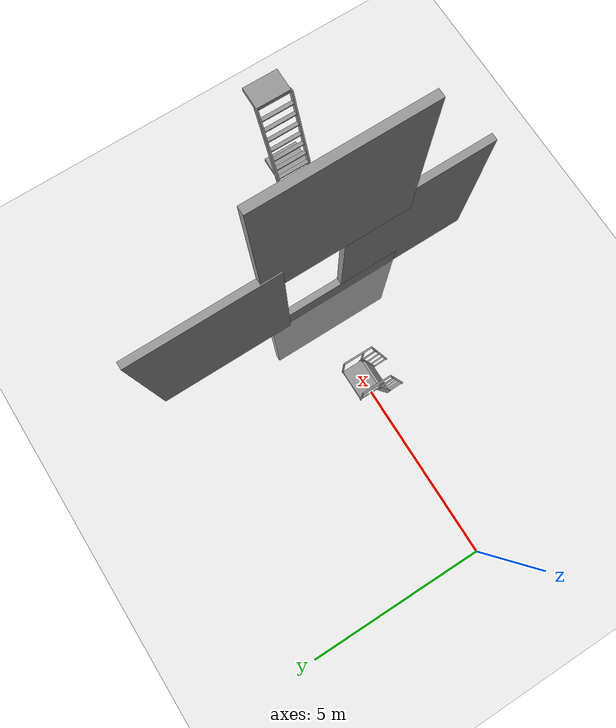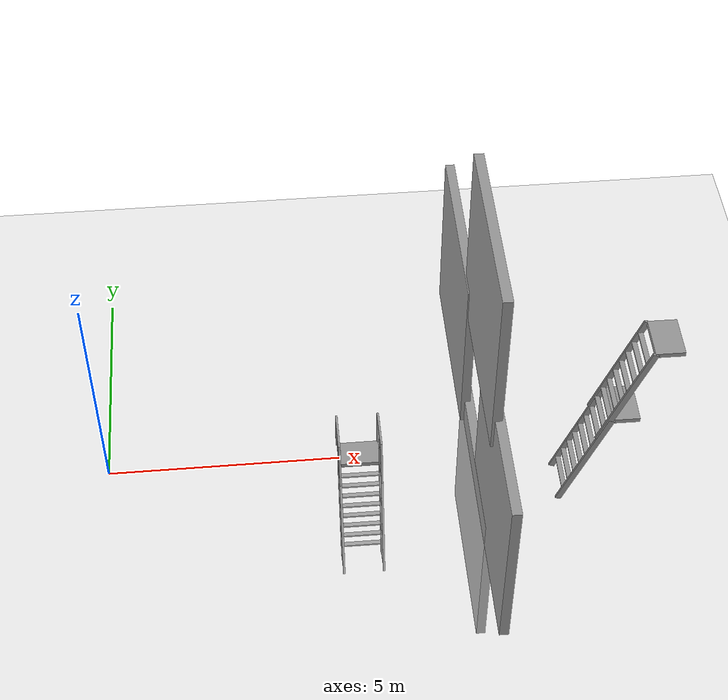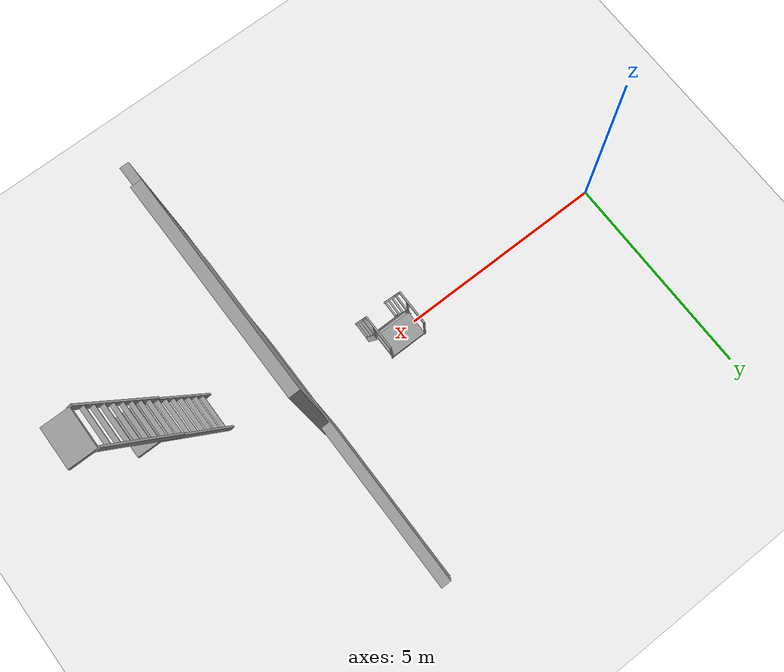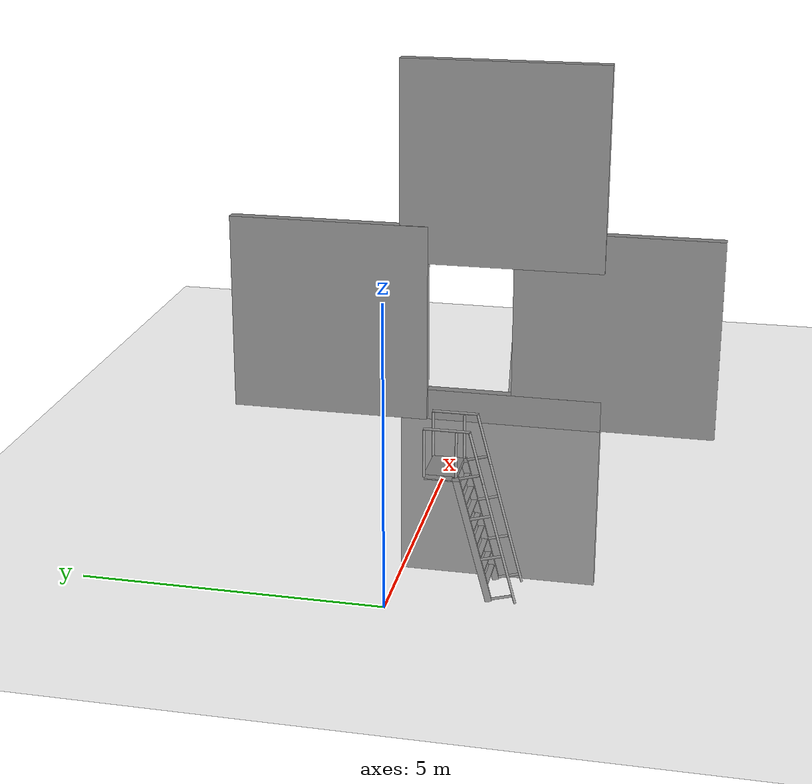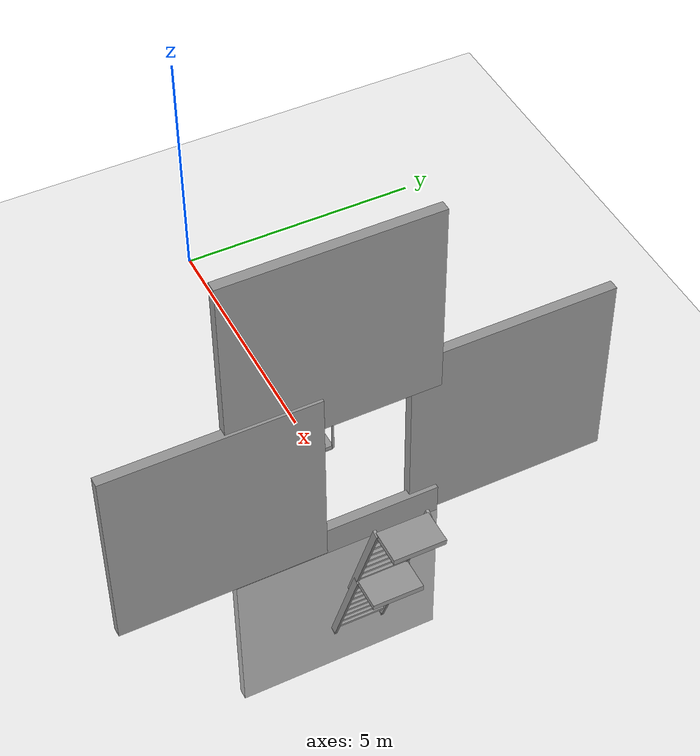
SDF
<sdf version="1.7">
 <world name="default">
  <model name="ground_plane">
   <static>1</static>
   <link name="link">
    <collision name="collision">
     <geometry><plane><normal>0 0 1</normal><size>100 100</size></plane></geometry>
     <surface>
      <contact><collide_bitmask>65535</collide_bitmask></contact>
      <friction><ode><mu>100</mu><mu2>50</mu2></ode></friction>
     </surface>
    </collision>
    <visual name="visual">
     <cast_shadows>0</cast_shadows>
     <geometry><plane><normal>0 0 1</normal><size>100 100</size></plane></geometry>
     <material>
      <script><uri>file://media/materials/scripts/gazebo.material</uri><name>Gazebo/Grey</name></script>
     </material>
    </visual>
   </link>
  </model>
  <model name="grey_wall_0_clone_1">
   <static>1</static>
   <link name="link">
    <pose>0 0 2 0 -0 0</pose>
    <collision name="collision"><geometry><box><size>0.2 4 4</size></box></geometry></collision>
    <visual name="visual">
     <cast_shadows>0</cast_shadows>
     <geometry><box><size>0.2 4 4</size></box></geometry>
     <material><script><name>vrc/grey_wall</name><uri>__default__</uri></script></material>
    </visual>
   </link>
   <pose>7.87479 2.84716 0 0 -0 0</pose>
  </model>
  <model name="grey_wall_0_clone_3">
   <static>1</static>
   <link name="link">
    <pose>0 0 2 0 -0 0</pose>
    <collision name="collision"><geometry><box><size>0.2 4 4</size></box></geometry></collision>
    <visual name="visual">
     <cast_shadows>0</cast_shadows>
     <geometry><box><size>0.2 4 4</size></box></geometry>
     <material><script><name>vrc/grey_wall</name><uri>__default__</uri></script></material>
    </visual>
   </link>
   <pose>7.95689 -2.83465 0 0 -0 0</pose>
  </model>
  <model name="grey_wall_0_clone_1_clone_0_clone_clone">
   <static>1</static>
   <link name="link">
    <pose>0 0 2 0 -0 0</pose>
    <collision name="collision"><geometry><box><size>0.2 4 4</size></box></geometry></collision>
    <visual name="visual">
     <cast_shadows>0</cast_shadows>
     <geometry><box><size>0.2 4 4</size></box></geometry>
     <material><script><name>vrc/grey_wall</name><uri>__default__</uri></script></material>
    </visual>
   </link>
   <pose>7.90163 -0.590147 3.25039 0 -0 0</pose>
  </model>
  <model name="grey_wall_0_clone_1_clone_0_clone_clone_1_clone">
   <static>1</static>
   <link name="link">
    <pose>0 0 2 0 -0 0</pose>
    <collision name="collision"><geometry><box><size>0.2 4 4</size></box></geometry></collision>
    <visual name="visual">
     <cast_shadows>0</cast_shadows>
     <geometry><box><size>0.2 4 4</size></box></geometry>
     <material><script><name>vrc/grey_wall</name><uri>__default__</uri></script></material>
    </visual>
   </link>
   <pose>7.95608 -0.613712 -3.38849 0 -0 0</pose>
  </model>
  <model name="ladder_70deg_0rails_clone_0_clone">
   <static>1</static>
   <link name="step0">
    <pose>0 0.097059 0.266667 0 -0 0</pose>
    <inertial>
     <mass>9.75482</mass>
     <inertia>
      <ixx>0.00957124</ixx>
      <iyy>0.65963</iyy>
      <izz>0.666842</izz>
      <ixy>0</ixy>
      <ixz>0</ixz>
      <iyz>0</iyz>
     </inertia>
    </inertial>
    <collision name="collision"><geometry><box><size>0.9 0.1016 0.0381</size></box></geometry></collision>
    <visual name="visual">
     <geometry><box><size>0.9 0.1016 0.0381</size></box></geometry>
     <material>
      <script><uri>file://media/materials/scripts/gazebo.material</uri><name>Gazebo/Grey</name></script>
     </material>
    </visual>
   </link>
   <link name="step1">
    <pose>0 0.194117 0.533333 0 -0 0</pose>
    <inertial>
     <mass>9.75482</mass>
     <inertia>
      <ixx>0.00957124</ixx>
      <iyy>0.65963</iyy>
      <izz>0.666842</izz>
      <ixy>0</ixy>
      <ixz>0</ixz>
      <iyz>0</iyz>
     </inertia>
    </inertial>
    <collision name="collision"><geometry><box><size>0.9 0.1016 0.0381</size></box></geometry></collision>
    <visual name="visual">
     <geometry><box><size>0.9 0.1016 0.0381</size></box></geometry>
     <material>
      <script><uri>file://media/materials/scripts/gazebo.material</uri><name>Gazebo/Grey</name></script>
     </material>
    </visual>
   </link>
   <link name="step2">
    <pose>0 0.291176 0.8 0 -0 0</pose>
    <inertial>
     <mass>9.75482</mass>
     <inertia>
      <ixx>0.00957124</ixx>
      <iyy>0.65963</iyy>
      <izz>0.666842</izz>
      <ixy>0</ixy>
      <ixz>0</ixz>
      <iyz>0</iyz>
     </inertia>
    </inertial>
    <collision name="collision"><geometry><box><size>0.9 0.1016 0.0381</size></box></geometry></collision>
    <visual name="visual">
     <geometry><box><size>0.9 0.1016 0.0381</size></box></geometry>
     <material>
      <script><uri>file://media/materials/scripts/gazebo.material</uri><name>Gazebo/Grey</name></script>
     </material>
    </visual>
   </link>
   <link name="step3">
    <pose>0 0.388235 1.06667 0 -0 0</pose>
    <inertial>
     <mass>9.75482</mass>
     <inertia>
      <ixx>0.00957124</ixx>
      <iyy>0.65963</iyy>
      <izz>0.666842</izz>
      <ixy>0</ixy>
      <ixz>0</ixz>
      <iyz>0</iyz>
     </inertia>
    </inertial>
    <collision name="collision"><geometry><box><size>0.9 0.1016 0.0381</size></box></geometry></collision>
    <visual name="visual">
     <geometry><box><size>0.9 0.1016 0.0381</size></box></geometry>
     <material>
      <script><uri>file://media/materials/scripts/gazebo.material</uri><name>Gazebo/Grey</name></script>
     </material>
    </visual>
   </link>
   <link name="step4">
    <pose>0 0.485294 1.33333 0 -0 0</pose>
    <inertial>
     <mass>9.75482</mass>
     <inertia>
      <ixx>0.00957124</ixx>
      <iyy>0.65963</iyy>
      <izz>0.666842</izz>
      <ixy>0</ixy>
      <ixz>0</ixz>
      <iyz>0</iyz>
     </inertia>
    </inertial>
    <collision name="collision"><geometry><box><size>0.9 0.1016 0.0381</size></box></geometry></collision>
    <visual name="visual">
     <geometry><box><size>0.9 0.1016 0.0381</size></box></geometry>
     <material>
      <script><uri>file://media/materials/scripts/gazebo.material</uri><name>Gazebo/Grey</name></script>
     </material>
    </visual>
   </link>
   <link name="step5">
    <pose>0 0.582352 1.6 0 -0 0</pose>
    <inertial>
     <mass>9.75482</mass>
     <inertia>
      <ixx>0.00957124</ixx>
      <iyy>0.65963</iyy>
      <izz>0.666842</izz>
      <ixy>0</ixy>
      <ixz>0</ixz>
      <iyz>0</iyz>
     </inertia>
    </inertial>
    <collision name="collision"><geometry><box><size>0.9 0.1016 0.0381</size></box></geometry></collision>
    <visual name="visual">
     <geometry><box><size>0.9 0.1016 0.0381</size></box></geometry>
     <material>
      <script><uri>file://media/materials/scripts/gazebo.material</uri><name>Gazebo/Grey</name></script>
     </material>
    </visual>
   </link>
   <link name="step6">
    <pose>0 0.679411 1.86667 0 -0 0</pose>
    <inertial>
     <mass>9.75482</mass>
     <inertia>
      <ixx>0.00957124</ixx>
      <iyy>0.65963</iyy>
      <izz>0.666842</izz>
      <ixy>0</ixy>
      <ixz>0</ixz>
      <iyz>0</iyz>
     </inertia>
    </inertial>
    <collision name="collision"><geometry><box><size>0.9 0.1016 0.0381</size></box></geometry></collision>
    <visual name="visual">
     <geometry><box><size>0.9 0.1016 0.0381</size></box></geometry>
     <material>
      <script><uri>file://media/materials/scripts/gazebo.material</uri><name>Gazebo/Grey</name></script>
     </material>
    </visual>
   </link>
   <link name="step7">
    <pose>0 0.77647 2.13333 0 -0 0</pose>
    <inertial>
     <mass>9.75482</mass>
     <inertia>
      <ixx>0.00957124</ixx>
      <iyy>0.65963</iyy>
      <izz>0.666842</izz>
      <ixy>0</ixy>
      <ixz>0</ixz>
      <iyz>0</iyz>
     </inertia>
    </inertial>
    <collision name="collision"><geometry><box><size>0.9 0.1016 0.0381</size></box></geometry></collision>
    <visual name="visual">
     <geometry><box><size>0.9 0.1016 0.0381</size></box></geometry>
     <material>
      <script><uri>file://media/materials/scripts/gazebo.material</uri><name>Gazebo/Grey</name></script>
     </material>
    </visual>
   </link>
   <link name="landing">
    <pose>0 1.17353 2.4 0 -0 0</pose>
    <inertial>
     <mass>57.6072</mass>
     <inertia><ixx>1.73518</ixx><iyy>3.89545</iyy><izz>5.6167</izz><ixy>0</ixy><ixz>0</ixz><iyz>0</iyz></inertia>
    </inertial>
    <collision name="collision"><geometry><box><size>0.9 0.6 0.1016</size></box></geometry></collision>
    <visual name="visual">
     <geometry><box><size>0.9 0.6 0.1016</size></box></geometry>
     <material>
      <script><uri>file://media/materials/scripts/gazebo.material</uri><name>Gazebo/Grey</name></script>
     </material>
    </visual>
   </link>
   <link name="left_side_wall">
    <pose>-0.45 0.436764 1.2 1.22173 -0 0</pose>
    <collision name="collision"><geometry><box><size>0.0508 2.63403 0.13</size></box></geometry></collision>
    <visual name="visual">
     <geometry><box><size>0.0508 2.63403 0.13</size></box></geometry>
     <material>
      <script><uri>file://media/materials/scripts/gazebo.material</uri><name>Gazebo/Grey</name></script>
     </material>
    </visual>
   </link>
   <link name="right_side_wall">
    <pose>0.45 0.436764 1.2 1.22173 -0 0</pose>
    <collision name="collision"><geometry><box><size>0.0508 2.63403 0.13</size></box></geometry></collision>
    <visual name="visual">
     <geometry><box><size>0.0508 2.63403 0.13</size></box></geometry>
     <material>
      <script><uri>file://media/materials/scripts/gazebo.material</uri><name>Gazebo/Grey</name></script>
     </material>
    </visual>
   </link>
   <pose>9.61991 -1.0182 0 0 0 -1.5783</pose>
  </model>
  <model name="ladder_70deg_0rails_clone_1">
   <static>1</static>
   <link name="step0">
    <pose>0 0.097059 0.266667 0 -0 0</pose>
    <inertial>
     <mass>9.75482</mass>
     <inertia>
      <ixx>0.00957124</ixx>
      <iyy>0.65963</iyy>
      <izz>0.666842</izz>
      <ixy>0</ixy>
      <ixz>0</ixz>
      <iyz>0</iyz>
     </inertia>
    </inertial>
    <collision name="collision"><geometry><box><size>0.9 0.1016 0.0381</size></box></geometry></collision>
    <visual name="visual">
     <geometry><box><size>0.9 0.1016 0.0381</size></box></geometry>
     <material>
      <script><uri>file://media/materials/scripts/gazebo.material</uri><name>Gazebo/Grey</name></script>
     </material>
    </visual>
   </link>
   <link name="step1">
    <pose>0 0.194117 0.533333 0 -0 0</pose>
    <inertial>
     <mass>9.75482</mass>
     <inertia>
      <ixx>0.00957124</ixx>
      <iyy>0.65963</iyy>
      <izz>0.666842</izz>
      <ixy>0</ixy>
      <ixz>0</ixz>
      <iyz>0</iyz>
     </inertia>
    </inertial>
    <collision name="collision"><geometry><box><size>0.9 0.1016 0.0381</size></box></geometry></collision>
    <visual name="visual">
     <geometry><box><size>0.9 0.1016 0.0381</size></box></geometry>
     <material>
      <script><uri>file://media/materials/scripts/gazebo.material</uri><name>Gazebo/Grey</name></script>
     </material>
    </visual>
   </link>
   <link name="step2">
    <pose>0 0.291176 0.8 0 -0 0</pose>
    <inertial>
     <mass>9.75482</mass>
     <inertia>
      <ixx>0.00957124</ixx>
      <iyy>0.65963</iyy>
      <izz>0.666842</izz>
      <ixy>0</ixy>
      <ixz>0</ixz>
      <iyz>0</iyz>
     </inertia>
    </inertial>
    <collision name="collision"><geometry><box><size>0.9 0.1016 0.0381</size></box></geometry></collision>
    <visual name="visual">
     <geometry><box><size>0.9 0.1016 0.0381</size></box></geometry>
     <material>
      <script><uri>file://media/materials/scripts/gazebo.material</uri><name>Gazebo/Grey</name></script>
     </material>
    </visual>
   </link>
   <link name="step3">
    <pose>0 0.388235 1.06667 0 -0 0</pose>
    <inertial>
     <mass>9.75482</mass>
     <inertia>
      <ixx>0.00957124</ixx>
      <iyy>0.65963</iyy>
      <izz>0.666842</izz>
      <ixy>0</ixy>
      <ixz>0</ixz>
      <iyz>0</iyz>
     </inertia>
    </inertial>
    <collision name="collision"><geometry><box><size>0.9 0.1016 0.0381</size></box></geometry></collision>
    <visual name="visual">
     <geometry><box><size>0.9 0.1016 0.0381</size></box></geometry>
     <material>
      <script><uri>file://media/materials/scripts/gazebo.material</uri><name>Gazebo/Grey</name></script>
     </material>
    </visual>
   </link>
   <link name="step4">
    <pose>0 0.485294 1.33333 0 -0 0</pose>
    <inertial>
     <mass>9.75482</mass>
     <inertia>
      <ixx>0.00957124</ixx>
      <iyy>0.65963</iyy>
      <izz>0.666842</izz>
      <ixy>0</ixy>
      <ixz>0</ixz>
      <iyz>0</iyz>
     </inertia>
    </inertial>
    <collision name="collision"><geometry><box><size>0.9 0.1016 0.0381</size></box></geometry></collision>
    <visual name="visual">
     <geometry><box><size>0.9 0.1016 0.0381</size></box></geometry>
     <material>
      <script><uri>file://media/materials/scripts/gazebo.material</uri><name>Gazebo/Grey</name></script>
     </material>
    </visual>
   </link>
   <link name="step5">
    <pose>0 0.582352 1.6 0 -0 0</pose>
    <inertial>
     <mass>9.75482</mass>
     <inertia>
      <ixx>0.00957124</ixx>
      <iyy>0.65963</iyy>
      <izz>0.666842</izz>
      <ixy>0</ixy>
      <ixz>0</ixz>
      <iyz>0</iyz>
     </inertia>
    </inertial>
    <collision name="collision"><geometry><box><size>0.9 0.1016 0.0381</size></box></geometry></collision>
    <visual name="visual">
     <geometry><box><size>0.9 0.1016 0.0381</size></box></geometry>
     <material>
      <script><uri>file://media/materials/scripts/gazebo.material</uri><name>Gazebo/Grey</name></script>
     </material>
    </visual>
   </link>
   <link name="step6">
    <pose>0 0.679411 1.86667 0 -0 0</pose>
    <inertial>
     <mass>9.75482</mass>
     <inertia>
      <ixx>0.00957124</ixx>
      <iyy>0.65963</iyy>
      <izz>0.666842</izz>
      <ixy>0</ixy>
      <ixz>0</ixz>
      <iyz>0</iyz>
     </inertia>
    </inertial>
    <collision name="collision"><geometry><box><size>0.9 0.1016 0.0381</size></box></geometry></collision>
    <visual name="visual">
     <geometry><box><size>0.9 0.1016 0.0381</size></box></geometry>
     <material>
      <script><uri>file://media/materials/scripts/gazebo.material</uri><name>Gazebo/Grey</name></script>
     </material>
    </visual>
   </link>
   <link name="step7">
    <pose>0 0.77647 2.13333 0 -0 0</pose>
    <inertial>
     <mass>9.75482</mass>
     <inertia>
      <ixx>0.00957124</ixx>
      <iyy>0.65963</iyy>
      <izz>0.666842</izz>
      <ixy>0</ixy>
      <ixz>0</ixz>
      <iyz>0</iyz>
     </inertia>
    </inertial>
    <collision name="collision"><geometry><box><size>0.9 0.1016 0.0381</size></box></geometry></collision>
    <visual name="visual">
     <geometry><box><size>0.9 0.1016 0.0381</size></box></geometry>
     <material>
      <script><uri>file://media/materials/scripts/gazebo.material</uri><name>Gazebo/Grey</name></script>
     </material>
    </visual>
   </link>
   <link name="landing">
    <pose>0 1.17353 2.4 0 -0 0</pose>
    <inertial>
     <mass>57.6072</mass>
     <inertia><ixx>1.73518</ixx><iyy>3.89545</iyy><izz>5.6167</izz><ixy>0</ixy><ixz>0</ixz><iyz>0</iyz></inertia>
    </inertial>
    <collision name="collision"><geometry><box><size>0.9 0.6 0.1016</size></box></geometry></collision>
    <visual name="visual">
     <geometry><box><size>0.9 0.6 0.1016</size></box></geometry>
     <material>
      <script><uri>file://media/materials/scripts/gazebo.material</uri><name>Gazebo/Grey</name></script>
     </material>
    </visual>
   </link>
   <link name="left_side_wall">
    <pose>-0.45 0.436764 1.2 1.22173 -0 0</pose>
    <collision name="collision"><geometry><box><size>0.0508 2.63403 0.13</size></box></geometry></collision>
    <visual name="visual">
     <geometry><box><size>0.0508 2.63403 0.13</size></box></geometry>
     <material>
      <script><uri>file://media/materials/scripts/gazebo.material</uri><name>Gazebo/Grey</name></script>
     </material>
    </visual>
   </link>
   <link name="right_side_wall">
    <pose>0.45 0.436764 1.2 1.22173 -0 0</pose>
    <collision name="collision"><geometry><box><size>0.0508 2.63403 0.13</size></box></geometry></collision>
    <visual name="visual">
     <geometry><box><size>0.0508 2.63403 0.13</size></box></geometry>
     <material>
      <script><uri>file://media/materials/scripts/gazebo.material</uri><name>Gazebo/Grey</name></script>
     </material>
    </visual>
   </link>
   <pose>10.2796 -1.02063 1.92456 0 0 -1.5783</pose>
  </model>
  <model name="ladder_75deg_2rails_clone">
   <static>1</static>
   <link name="step0">
    <pose>0 0.071453 0.266667 0 -0 0</pose>
    <inertial>
     <mass>9.75482</mass>
     <inertia>
      <ixx>0.00957124</ixx>
      <iyy>0.65963</iyy>
      <izz>0.666842</izz>
      <ixy>0</ixy>
      <ixz>0</ixz>
      <iyz>0</iyz>
     </inertia>
    </inertial>
    <collision name="collision"><geometry><box><size>0.9 0.1016 0.0381</size></box></geometry></collision>
    <visual name="visual">
     <geometry><box><size>0.9 0.1016 0.0381</size></box></geometry>
     <material>
      <script><uri>file://media/materials/scripts/gazebo.material</uri><name>Gazebo/Grey</name></script>
     </material>
    </visual>
   </link>
   <link name="step1">
    <pose>0 0.142906 0.533333 0 -0 0</pose>
    <inertial>
     <mass>9.75482</mass>
     <inertia>
      <ixx>0.00957124</ixx>
      <iyy>0.65963</iyy>
      <izz>0.666842</izz>
      <ixy>0</ixy>
      <ixz>0</ixz>
      <iyz>0</iyz>
     </inertia>
    </inertial>
    <collision name="collision"><geometry><box><size>0.9 0.1016 0.0381</size></box></geometry></collision>
    <visual name="visual">
     <geometry><box><size>0.9 0.1016 0.0381</size></box></geometry>
     <material>
      <script><uri>file://media/materials/scripts/gazebo.material</uri><name>Gazebo/Grey</name></script>
     </material>
    </visual>
   </link>
   <link name="step2">
    <pose>0 0.214359 0.8 0 -0 0</pose>
    <inertial>
     <mass>9.75482</mass>
     <inertia>
      <ixx>0.00957124</ixx>
      <iyy>0.65963</iyy>
      <izz>0.666842</izz>
      <ixy>0</ixy>
      <ixz>0</ixz>
      <iyz>0</iyz>
     </inertia>
    </inertial>
    <collision name="collision"><geometry><box><size>0.9 0.1016 0.0381</size></box></geometry></collision>
    <visual name="visual">
     <geometry><box><size>0.9 0.1016 0.0381</size></box></geometry>
     <material>
      <script><uri>file://media/materials/scripts/gazebo.material</uri><name>Gazebo/Grey</name></script>
     </material>
    </visual>
   </link>
   <link name="step3">
    <pose>0 0.285812 1.06667 0 -0 0</pose>
    <inertial>
     <mass>9.75482</mass>
     <inertia>
      <ixx>0.00957124</ixx>
      <iyy>0.65963</iyy>
      <izz>0.666842</izz>
      <ixy>0</ixy>
      <ixz>0</ixz>
      <iyz>0</iyz>
     </inertia>
    </inertial>
    <collision name="collision"><geometry><box><size>0.9 0.1016 0.0381</size></box></geometry></collision>
    <visual name="visual">
     <geometry><box><size>0.9 0.1016 0.0381</size></box></geometry>
     <material>
      <script><uri>file://media/materials/scripts/gazebo.material</uri><name>Gazebo/Grey</name></script>
     </material>
    </visual>
   </link>
   <link name="step4">
    <pose>0 0.357266 1.33333 0 -0 0</pose>
    <inertial>
     <mass>9.75482</mass>
     <inertia>
      <ixx>0.00957124</ixx>
      <iyy>0.65963</iyy>
      <izz>0.666842</izz>
      <ixy>0</ixy>
      <ixz>0</ixz>
      <iyz>0</iyz>
     </inertia>
    </inertial>
    <collision name="collision"><geometry><box><size>0.9 0.1016 0.0381</size></box></geometry></collision>
    <visual name="visual">
     <geometry><box><size>0.9 0.1016 0.0381</size></box></geometry>
     <material>
      <script><uri>file://media/materials/scripts/gazebo.material</uri><name>Gazebo/Grey</name></script>
     </material>
    </visual>
   </link>
   <link name="step5">
    <pose>0 0.428719 1.6 0 -0 0</pose>
    <inertial>
     <mass>9.75482</mass>
     <inertia>
      <ixx>0.00957124</ixx>
      <iyy>0.65963</iyy>
      <izz>0.666842</izz>
      <ixy>0</ixy>
      <ixz>0</ixz>
      <iyz>0</iyz>
     </inertia>
    </inertial>
    <collision name="collision"><geometry><box><size>0.9 0.1016 0.0381</size></box></geometry></collision>
    <visual name="visual">
     <geometry><box><size>0.9 0.1016 0.0381</size></box></geometry>
     <material>
      <script><uri>file://media/materials/scripts/gazebo.material</uri><name>Gazebo/Grey</name></script>
     </material>
    </visual>
   </link>
   <link name="step6">
    <pose>0 0.500172 1.86667 0 -0 0</pose>
    <inertial>
     <mass>9.75482</mass>
     <inertia>
      <ixx>0.00957124</ixx>
      <iyy>0.65963</iyy>
      <izz>0.666842</izz>
      <ixy>0</ixy>
      <ixz>0</ixz>
      <iyz>0</iyz>
     </inertia>
    </inertial>
    <collision name="collision"><geometry><box><size>0.9 0.1016 0.0381</size></box></geometry></collision>
    <visual name="visual">
     <geometry><box><size>0.9 0.1016 0.0381</size></box></geometry>
     <material>
      <script><uri>file://media/materials/scripts/gazebo.material</uri><name>Gazebo/Grey</name></script>
     </material>
    </visual>
   </link>
   <link name="step7">
    <pose>0 0.571625 2.13333 0 -0 0</pose>
    <inertial>
     <mass>9.75482</mass>
     <inertia>
      <ixx>0.00957124</ixx>
      <iyy>0.65963</iyy>
      <izz>0.666842</izz>
      <ixy>0</ixy>
      <ixz>0</ixz>
      <iyz>0</iyz>
     </inertia>
    </inertial>
    <collision name="collision"><geometry><box><size>0.9 0.1016 0.0381</size></box></geometry></collision>
    <visual name="visual">
     <geometry><box><size>0.9 0.1016 0.0381</size></box></geometry>
     <material>
      <script><uri>file://media/materials/scripts/gazebo.material</uri><name>Gazebo/Grey</name></script>
     </material>
    </visual>
   </link>
   <link name="landing">
    <pose>0 0.943078 2.4 0 -0 0</pose>
    <inertial>
     <mass>57.6072</mass>
     <inertia><ixx>1.73518</ixx><iyy>3.89545</iyy><izz>5.6167</izz><ixy>0</ixy><ixz>0</ixz><iyz>0</iyz></inertia>
    </inertial>
    <collision name="collision"><geometry><box><size>0.9 0.6 0.1016</size></box></geometry></collision>
    <visual name="visual">
     <geometry><box><size>0.9 0.6 0.1016</size></box></geometry>
     <material>
      <script><uri>file://media/materials/scripts/gazebo.material</uri><name>Gazebo/Grey</name></script>
     </material>
    </visual>
   </link>
   <link name="left_side_wall">
    <pose>-0.45 0.321539 1.2 1.309 -0 0</pose>
    <collision name="collision"><geometry><box><size>0.0508 2.56466 0.13</size></box></geometry></collision>
    <visual name="visual">
     <geometry><box><size>0.0508 2.56466 0.13</size></box></geometry>
     <material>
      <script><uri>file://media/materials/scripts/gazebo.material</uri><name>Gazebo/Grey</name></script>
     </material>
    </visual>
   </link>
   <link name="right_side_wall">
    <pose>0.45 0.321539 1.2 1.309 -0 0</pose>
    <collision name="collision"><geometry><box><size>0.0508 2.56466 0.13</size></box></geometry></collision>
    <visual name="visual">
     <geometry><box><size>0.0508 2.56466 0.13</size></box></geometry>
     <material>
      <script><uri>file://media/materials/scripts/gazebo.material</uri><name>Gazebo/Grey</name></script>
     </material>
    </visual>
   </link>
   <link name="left_railing_long">
    <pose>-0.45 -0.053461 1.66651 -0.261799 0 0</pose>
    <collision name="collision">
     <geometry><cylinder><radius>0.02413</radius><length>3.51529</length></cylinder></geometry>
    </collision>
    <visual name="visual">
     <geometry><cylinder><radius>0.02413</radius><length>3.51529</length></cylinder></geometry>
     <material>
      <script><uri>file://media/materials/scripts/gazebo.material</uri><name>Gazebo/Grey</name></script>
     </material>
    </visual>
   </link>
   <link name="left_railing_upright0">
    <pose>-0.45 -0.210089 0.056293 1.309 -0 0</pose>
    <collision name="collision">
     <geometry><cylinder><radius>0.02413</radius><length>0.482963</length></cylinder></geometry>
    </collision>
    <visual name="visual">
     <geometry><cylinder><radius>0.02413</radius><length>0.482963</length></cylinder></geometry>
     <material>
      <script><uri>file://media/materials/scripts/gazebo.material</uri><name>Gazebo/Grey</name></script>
     </material>
    </visual>
   </link>
   <link name="left_railing_upright1">
    <pose>-0.45 0.00427 0.856293 1.309 -0 0</pose>
    <collision name="collision">
     <geometry><cylinder><radius>0.02413</radius><length>0.482963</length></cylinder></geometry>
    </collision>
    <visual name="visual">
     <geometry><cylinder><radius>0.02413</radius><length>0.482963</length></cylinder></geometry>
     <material>
      <script><uri>file://media/materials/scripts/gazebo.material</uri><name>Gazebo/Grey</name></script>
     </material>
    </visual>
   </link>
   <link name="left_railing_upright2">
    <pose>-0.45 0.21863 1.65629 1.309 -0 0</pose>
    <collision name="collision">
     <geometry><cylinder><radius>0.02413</radius><length>0.482963</length></cylinder></geometry>
    </collision>
    <visual name="visual">
     <geometry><cylinder><radius>0.02413</radius><length>0.482963</length></cylinder></geometry>
     <material>
      <script><uri>file://media/materials/scripts/gazebo.material</uri><name>Gazebo/Grey</name></script>
     </material>
    </visual>
   </link>
   <link name="left_railing_upright3">
    <pose>-0.45 0.432989 2.45629 1.309 -0 0</pose>
    <collision name="collision">
     <geometry><cylinder><radius>0.02413</radius><length>0.482963</length></cylinder></geometry>
    </collision>
    <visual name="visual">
     <geometry><cylinder><radius>0.02413</radius><length>0.482963</length></cylinder></geometry>
     <material>
      <script><uri>file://media/materials/scripts/gazebo.material</uri><name>Gazebo/Grey</name></script>
     </material>
    </visual>
   </link>
   <link name="left_railing_landing_top">
    <pose>-0.45 0.818078 3.35714 1.5708 -0 0</pose>
    <collision name="collision">
     <geometry><cylinder><radius>0.02413</radius><length>0.87413</length></cylinder></geometry>
    </collision>
    <visual name="visual">
     <geometry><cylinder><radius>0.02413</radius><length>0.87413</length></cylinder></geometry>
     <material>
      <script><uri>file://media/materials/scripts/gazebo.material</uri><name>Gazebo/Grey</name></script>
     </material>
    </visual>
   </link>
   <link name="left_railing_landing_upright_0">
    <pose>-0.45 0.643078 2.86651 0 -0 0</pose>
    <collision name="collision">
     <geometry><cylinder><radius>0.02413</radius><length>0.933013</length></cylinder></geometry>
    </collision>
    <visual name="visual">
     <geometry><cylinder><radius>0.02413</radius><length>0.933013</length></cylinder></geometry>
     <material>
      <script><uri>file://media/materials/scripts/gazebo.material</uri><name>Gazebo/Grey</name></script>
     </material>
    </visual>
   </link>
   <link name="left_railing_landing_upright_1">
    <pose>-0.45 1.24308 2.86651 0 -0 0</pose>
    <collision name="collision">
     <geometry><cylinder><radius>0.02413</radius><length>0.933013</length></cylinder></geometry>
    </collision>
    <visual name="visual">
     <geometry><cylinder><radius>0.02413</radius><length>0.933013</length></cylinder></geometry>
     <material>
      <script><uri>file://media/materials/scripts/gazebo.material</uri><name>Gazebo/Grey</name></script>
     </material>
    </visual>
   </link>
   <link name="right_railing_long">
    <pose>0.45 -0.053461 1.66651 -0.261799 0 0</pose>
    <collision name="collision">
     <geometry><cylinder><radius>0.02413</radius><length>3.51529</length></cylinder></geometry>
    </collision>
    <visual name="visual">
     <geometry><cylinder><radius>0.02413</radius><length>3.51529</length></cylinder></geometry>
     <material>
      <script><uri>file://media/materials/scripts/gazebo.material</uri><name>Gazebo/Grey</name></script>
     </material>
    </visual>
   </link>
   <link name="right_railing_upright0">
    <pose>0.45 -0.210089 0.056293 1.309 -0 0</pose>
    <collision name="collision">
     <geometry><cylinder><radius>0.02413</radius><length>0.482963</length></cylinder></geometry>
    </collision>
    <visual name="visual">
     <geometry><cylinder><radius>0.02413</radius><length>0.482963</length></cylinder></geometry>
     <material>
      <script><uri>file://media/materials/scripts/gazebo.material</uri><name>Gazebo/Grey</name></script>
     </material>
    </visual>
   </link>
   <link name="right_railing_upright1">
    <pose>0.45 0.00427 0.856293 1.309 -0 0</pose>
    <collision name="collision">
     <geometry><cylinder><radius>0.02413</radius><length>0.482963</length></cylinder></geometry>
    </collision>
    <visual name="visual">
     <geometry><cylinder><radius>0.02413</radius><length>0.482963</length></cylinder></geometry>
     <material>
      <script><uri>file://media/materials/scripts/gazebo.material</uri><name>Gazebo/Grey</name></script>
     </material>
    </visual>
   </link>
   <link name="right_railing_upright2">
    <pose>0.45 0.21863 1.65629 1.309 -0 0</pose>
    <collision name="collision">
     <geometry><cylinder><radius>0.02413</radius><length>0.482963</length></cylinder></geometry>
    </collision>
    <visual name="visual">
     <geometry><cylinder><radius>0.02413</radius><length>0.482963</length></cylinder></geometry>
     <material>
      <script><uri>file://media/materials/scripts/gazebo.material</uri><name>Gazebo/Grey</name></script>
     </material>
    </visual>
   </link>
   <link name="right_railing_upright3">
    <pose>0.45 0.432989 2.45629 1.309 -0 0</pose>
    <collision name="collision">
     <geometry><cylinder><radius>0.02413</radius><length>0.482963</length></cylinder></geometry>
    </collision>
    <visual name="visual">
     <geometry><cylinder><radius>0.02413</radius><length>0.482963</length></cylinder></geometry>
     <material>
      <script><uri>file://media/materials/scripts/gazebo.material</uri><name>Gazebo/Grey</name></script>
     </material>
    </visual>
   </link>
   <link name="right_railing_landing_top">
    <pose>0.45 0.818078 3.35714 1.5708 -0 0</pose>
    <collision name="collision">
     <geometry><cylinder><radius>0.02413</radius><length>0.87413</length></cylinder></geometry>
    </collision>
    <visual name="visual">
     <geometry><cylinder><radius>0.02413</radius><length>0.87413</length></cylinder></geometry>
     <material>
      <script><uri>file://media/materials/scripts/gazebo.material</uri><name>Gazebo/Grey</name></script>
     </material>
    </visual>
   </link>
   <link name="right_railing_landing_upright_0">
    <pose>0.45 0.643078 2.86651 0 -0 0</pose>
    <collision name="collision">
     <geometry><cylinder><radius>0.02413</radius><length>0.933013</length></cylinder></geometry>
    </collision>
    <visual name="visual">
     <geometry><cylinder><radius>0.02413</radius><length>0.933013</length></cylinder></geometry>
     <material>
      <script><uri>file://media/materials/scripts/gazebo.material</uri><name>Gazebo/Grey</name></script>
     </material>
    </visual>
   </link>
   <link name="right_railing_landing_upright_1">
    <pose>0.45 1.24308 2.86651 0 -0 0</pose>
    <collision name="collision">
     <geometry><cylinder><radius>0.02413</radius><length>0.933013</length></cylinder></geometry>
    </collision>
    <visual name="visual">
     <geometry><cylinder><radius>0.02413</radius><length>0.933013</length></cylinder></geometry>
     <material>
      <script><uri>file://media/materials/scripts/gazebo.material</uri><name>Gazebo/Grey</name></script>
     </material>
    </visual>
   </link>
   <pose>5.42909 -0.887348 -2.38424 0 -0 0</pose>
  </model>
 </world>
</sdf>
